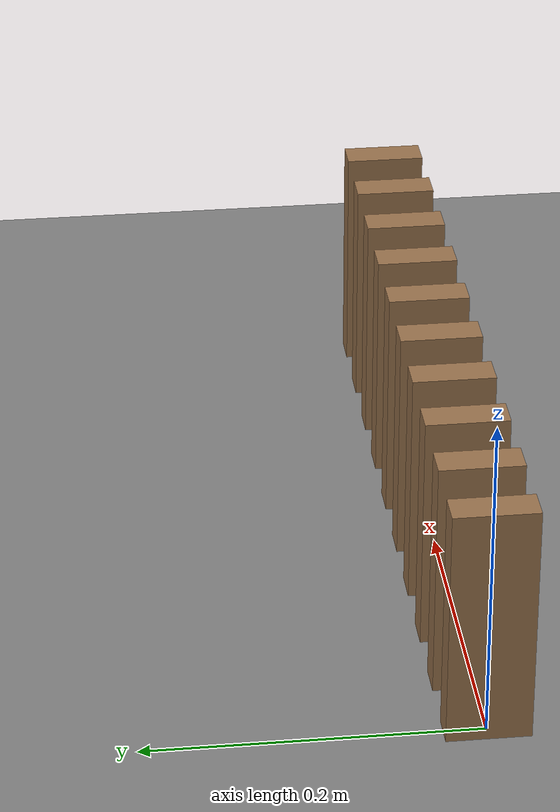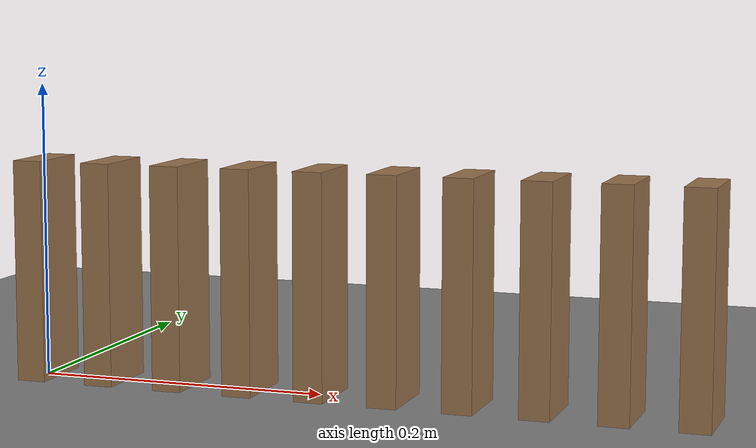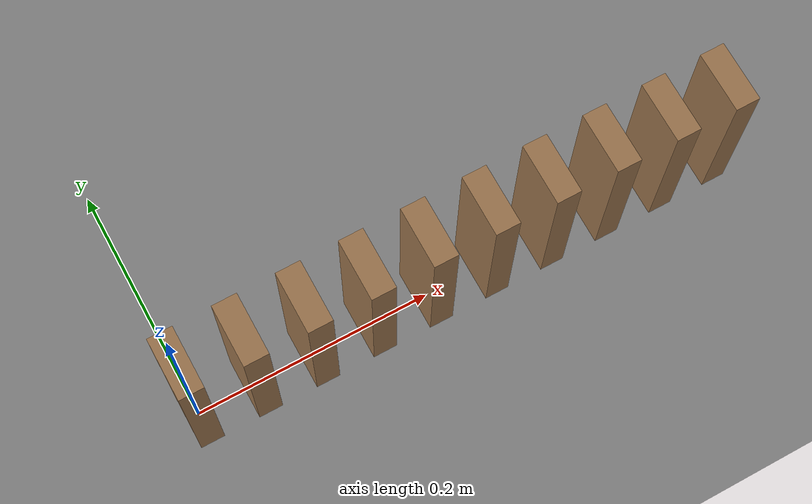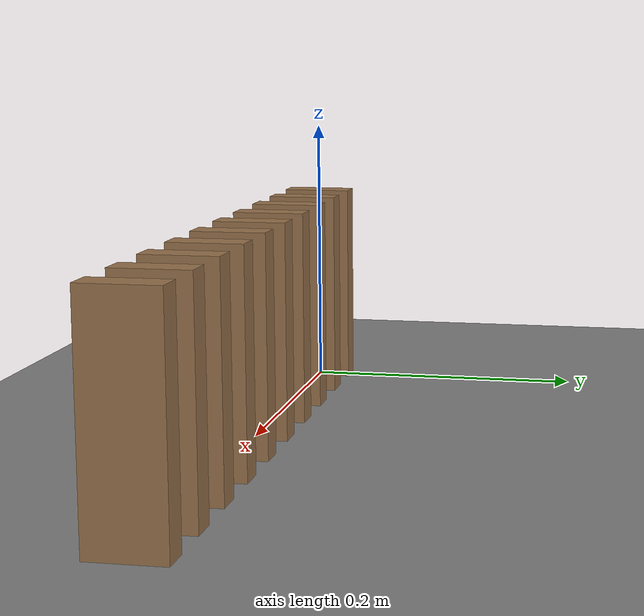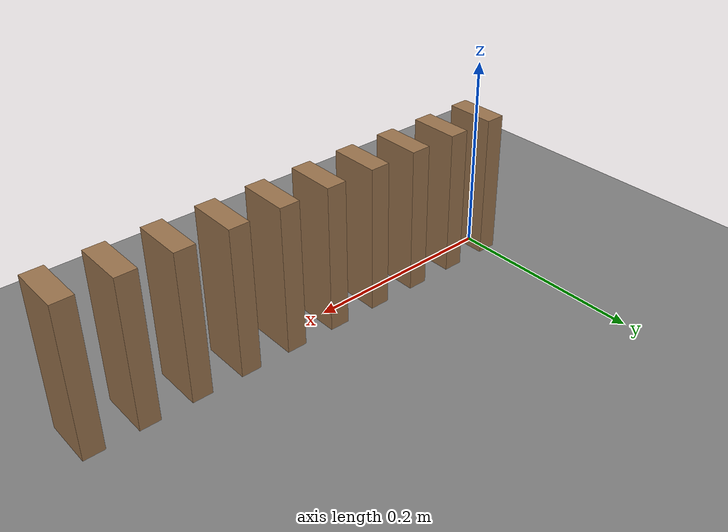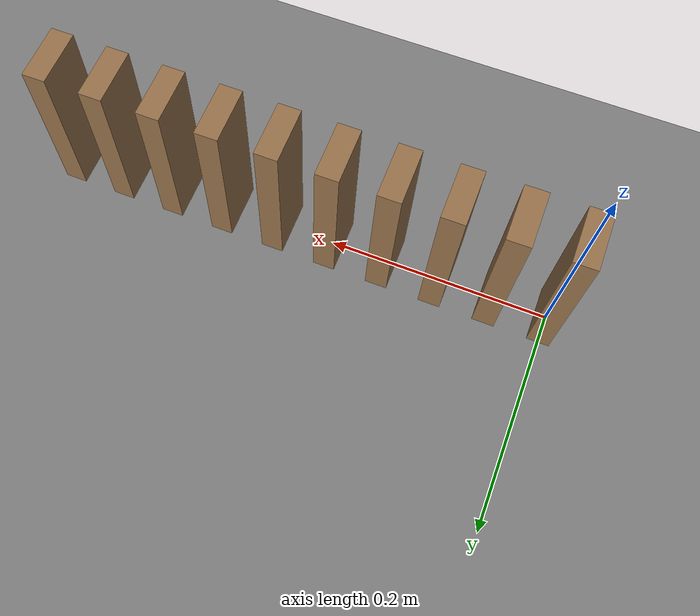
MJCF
<mujoco model="ten_falling_dominoes">
  <compiler angle="radian"/>
  <option timestep="0.002"/>
  <worldbody>
    <geom name="floor" type="plane" size="6 6 0.1" friction="0.9 0.005 0.001"/>
    <body name="domino1" pos="0 0 0.075">
      <freejoint/>
      <geom name="domino1" type="box" pos="0 0 0" size="0.01 0.025 0.075" mass="0.15" friction="0.9 0.005 0.001" solref="0.01 1" rgba="0.6 0.45 0.3 1"/>
    </body>
    <body name="domino2" pos="0.05 0 0.075">
      <freejoint/>
      <geom name="domino2" type="box" pos="0 0 0" size="0.01 0.025 0.075" mass="0.15" friction="0.9 0.005 0.001" solref="0.01 1" rgba="0.6 0.45 0.3 1"/>
    </body>
    <body name="domino3" pos="0.1 0 0.075">
      <freejoint/>
      <geom name="domino3" type="box" pos="0 0 0" size="0.01 0.025 0.075" mass="0.15" friction="0.9 0.005 0.001" solref="0.01 1" rgba="0.6 0.45 0.3 1"/>
    </body>
    <body name="domino4" pos="0.15 0 0.075">
      <freejoint/>
      <geom name="domino4" type="box" pos="0 0 0" size="0.01 0.025 0.075" mass="0.15" friction="0.9 0.005 0.001" solref="0.01 1" rgba="0.6 0.45 0.3 1"/>
    </body>
    <body name="domino5" pos="0.2 0 0.075">
      <freejoint/>
      <geom name="domino5" type="box" pos="0 0 0" size="0.01 0.025 0.075" mass="0.15" friction="0.9 0.005 0.001" solref="0.01 1" rgba="0.6 0.45 0.3 1"/>
    </body>
    <body name="domino6" pos="0.25 0 0.075">
      <freejoint/>
      <geom name="domino6" type="box" pos="0 0 0" size="0.01 0.025 0.075" mass="0.15" friction="0.9 0.005 0.001" solref="0.01 1" rgba="0.6 0.45 0.3 1"/>
    </body>
    <body name="domino7" pos="0.3 0 0.075">
      <freejoint/>
      <geom name="domino7" type="box" pos="0 0 0" size="0.01 0.025 0.075" mass="0.15" friction="0.9 0.005 0.001" solref="0.01 1" rgba="0.6 0.45 0.3 1"/>
    </body>
    <body name="domino8" pos="0.35 0 0.075">
      <freejoint/>
      <geom name="domino8" type="box" pos="0 0 0" size="0.01 0.025 0.075" mass="0.15" friction="0.9 0.005 0.001" solref="0.01 1" rgba="0.6 0.45 0.3 1"/>
    </body>
    <body name="domino9" pos="0.4 0 0.075">
      <freejoint/>
      <geom name="domino9" type="box" pos="0 0 0" size="0.01 0.025 0.075" mass="0.15" friction="0.9 0.005 0.001" solref="0.01 1" rgba="0.6 0.45 0.3 1"/>
    </body>
    <body name="domino10" pos="0.45 0 0.075">
      <freejoint/>
      <geom name="domino10" type="box" pos="0 0 0" size="0.01 0.025 0.075" mass="0.15" friction="0.9 0.005 0.001" solref="0.01 1" rgba="0.6 0.45 0.3 1"/>
    </body>
  </worldbody>
  <keyframe>
    <key name="start" qpos="0 0 0.075 1 0 0 0 0.05 0 0.075 1 0 0 0 0.1 0 0.075 1 0 0 0 0.15 0 0.075 1 0 0 0 0.2 0 0.075 1 0 0 0 0.25 0 0.075 1 0 0 0 0.3 0 0.075 1 0 0 0 0.35 0 0.075 1 0 0 0 0.4 0 0.075 1 0 0 0 0.45 0 0.075 1 0 0 0" qvel="0 0 0 0 4 0 0 0 0 0 0 0 0 0 0 0 0 0 0 0 0 0 0 0 0 0 0 0 0 0 0 0 0 0 0 0 0 0 0 0 0 0 0 0 0 0 0 0 0 0 0 0 0 0 0 0 0 0 0 0"/>
  </keyframe>
</mujoco>
